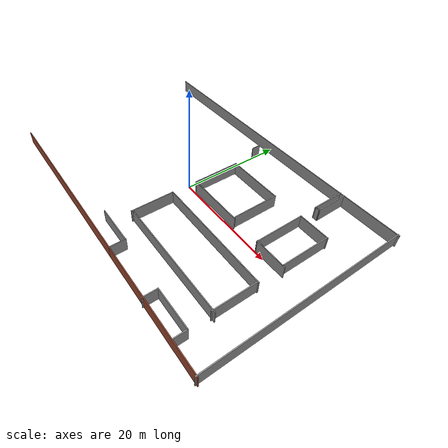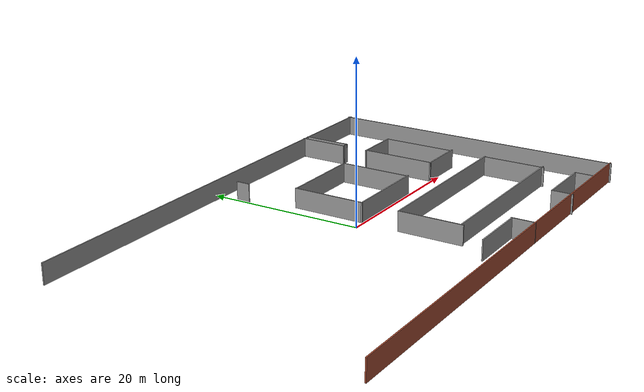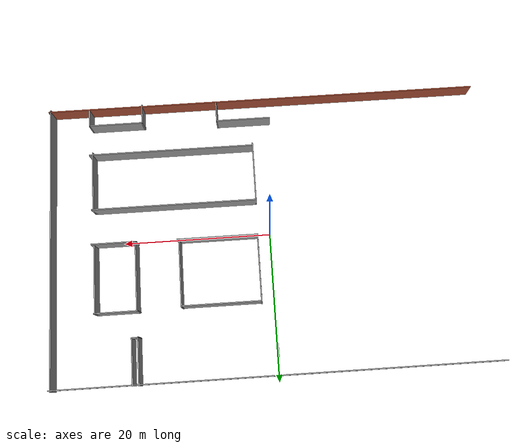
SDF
<sdf version="1.7">
 <model name="map_mir">
  <link name="Wall_0">
   <pose>0.059737 19.1491 0 0 -0 0</pose>
   <visual name="Wall_0_Visual">
    <pose>0 0 1.2475 0 -0 0</pose>
    <geometry><box><size>59.65 0.15 2.495</size></box></geometry>
    <material>
     <script><uri>file://media/materials/scripts/gazebo.material</uri><name>Gazebo/Grey</name></script>
     <ambient>1 1 1 1</ambient>
     <shader type="pixel"/>
    </material>
    <meta><layer>0</layer></meta>
   </visual>
   <collision name="Wall_0_Collision">
    <pose>0 0 1.2475 0 -0 0</pose>
    <geometry><box><size>59.65 0.15 2.495</size></box></geometry>
    <surface>
     <friction>
      <ode><mu>1</mu><mu2>1</mu2><fdir1>0 0 0</fdir1><slip1>0</slip1><slip2>0</slip2></ode>
      <torsional>
       <coefficient>1</coefficient>
       <patch_radius>0</patch_radius>
       <surface_radius>0</surface_radius>
       <use_patch_radius>1</use_patch_radius>
       <ode><slip>0</slip></ode>
      </torsional>
     </friction>
     <bounce><restitution_coefficient>0</restitution_coefficient><threshold>1e+06</threshold></bounce>
     <contact>
      <collide_without_contact>0</collide_without_contact>
      <collide_without_contact_bitmask>1</collide_without_contact_bitmask>
      <collide_bitmask>1</collide_bitmask>
      <ode>
       <soft_cfm>0</soft_cfm>
       <soft_erp>0.2</soft_erp>
       <kp>1e+13</kp>
       <kd>1</kd>
       <max_vel>0.01</max_vel>
       <min_depth>0</min_depth>
      </ode>
      <bullet>
       <split_impulse>1</split_impulse>
       <split_impulse_penetration_threshold>-0.01</split_impulse_penetration_threshold>
       <soft_cfm>0</soft_cfm>
       <soft_erp>0.2</soft_erp>
       <kp>1e+13</kp>
       <kd>1</kd>
      </bullet>
     </contact>
    </surface>
   </collision>
  </link>
  <link name="Wall_1">
   <pose>29.5673 0.013012 0 0 0 -1.5708</pose>
   <visual name="Wall_1_Visual">
    <pose>0 0 1.25 0 -0 0</pose>
    <geometry><box><size>38.75 0.15 2.5</size></box></geometry>
    <material>
     <script><uri>file://media/materials/scripts/gazebo.material</uri><name>Gazebo/Grey</name></script>
     <ambient>1 1 1 1</ambient>
     <shader type="pixel"/>
    </material>
    <meta><layer>0</layer></meta>
   </visual>
   <collision name="Wall_1_Collision">
    <pose>0 0 1.25 0 -0 0</pose>
    <geometry><box><size>38.75 0.15 2.5</size></box></geometry>
    <surface>
     <friction>
      <ode><mu>1</mu><mu2>1</mu2><fdir1>0 0 0</fdir1><slip1>0</slip1><slip2>0</slip2></ode>
      <torsional>
       <coefficient>1</coefficient>
       <patch_radius>0</patch_radius>
       <surface_radius>0</surface_radius>
       <use_patch_radius>1</use_patch_radius>
       <ode><slip>0</slip></ode>
      </torsional>
     </friction>
     <bounce><restitution_coefficient>0</restitution_coefficient><threshold>1e+06</threshold></bounce>
     <contact>
      <collide_without_contact>0</collide_without_contact>
      <collide_without_contact_bitmask>1</collide_without_contact_bitmask>
      <collide_bitmask>1</collide_bitmask>
      <ode>
       <soft_cfm>0</soft_cfm>
       <soft_erp>0.2</soft_erp>
       <kp>1e+13</kp>
       <kd>1</kd>
       <max_vel>0.01</max_vel>
       <min_depth>0</min_depth>
      </ode>
      <bullet>
       <split_impulse>1</split_impulse>
       <split_impulse_penetration_threshold>-0.01</split_impulse_penetration_threshold>
       <soft_cfm>0</soft_cfm>
       <soft_erp>0.2</soft_erp>
       <kp>1e+13</kp>
       <kd>1</kd>
      </bullet>
     </contact>
    </surface>
   </collision>
  </link>
  <link name="Wall_2">
   <pose>0.059738 -19.1013 0 0 -0 3.14159</pose>
   <visual name="Wall_2_Visual">
    <pose>0 0 1.25 0 -0 0</pose>
    <geometry><box><size>59.65 0.15 2.5</size></box></geometry>
    <material>
     <script><uri>file://media/materials/scripts/gazebo.material</uri><name>Gazebo/Bricks</name></script>
     <ambient>1 0.764706 0.305882 1</ambient>
     <shader type="pixel"/>
    </material>
    <meta><layer>0</layer></meta>
   </visual>
   <collision name="Wall_2_Collision">
    <pose>0 0 1.25 0 -0 0</pose>
    <geometry><box><size>59.65 0.15 2.5</size></box></geometry>
    <surface>
     <friction>
      <ode><mu>1</mu><mu2>1</mu2><fdir1>0 0 0</fdir1><slip1>0</slip1><slip2>0</slip2></ode>
      <torsional>
       <coefficient>1</coefficient>
       <patch_radius>0</patch_radius>
       <surface_radius>0</surface_radius>
       <use_patch_radius>1</use_patch_radius>
       <ode><slip>0</slip></ode>
      </torsional>
     </friction>
     <bounce><restitution_coefficient>0</restitution_coefficient><threshold>1e+06</threshold></bounce>
     <contact>
      <collide_without_contact>0</collide_without_contact>
      <collide_without_contact_bitmask>1</collide_without_contact_bitmask>
      <collide_bitmask>1</collide_bitmask>
      <ode>
       <soft_cfm>0</soft_cfm>
       <soft_erp>0.2</soft_erp>
       <kp>1e+13</kp>
       <kd>1</kd>
       <max_vel>0.01</max_vel>
       <min_depth>0</min_depth>
      </ode>
      <bullet>
       <split_impulse>1</split_impulse>
       <split_impulse_penetration_threshold>-0.01</split_impulse_penetration_threshold>
       <soft_cfm>0</soft_cfm>
       <soft_erp>0.2</soft_erp>
       <kp>1e+13</kp>
       <kd>1</kd>
      </bullet>
     </contact>
    </surface>
   </collision>
  </link>
  <link name="Wall_25">
   <pose>18.1409 16.1479 0 0 0 -1.5708</pose>
   <visual name="Wall_25_Visual">
    <pose>0 0 1.25 0 -0 0</pose>
    <geometry><box><size>6.32102 0.15 2.5</size></box></geometry>
    <material>
     <script><uri>file://media/materials/scripts/gazebo.material</uri><name>Gazebo/Grey</name></script>
     <ambient>1 1 1 1</ambient>
     <shader type="pixel"/>
    </material>
    <meta><layer>0</layer></meta>
   </visual>
   <collision name="Wall_25_Collision">
    <pose>0 0 1.25 0 -0 0</pose>
    <geometry><box><size>6.32102 0.15 2.5</size></box></geometry>
    <surface>
     <friction>
      <ode><mu>1</mu><mu2>1</mu2><fdir1>0 0 0</fdir1><slip1>0</slip1><slip2>0</slip2></ode>
      <torsional>
       <coefficient>1</coefficient>
       <patch_radius>0</patch_radius>
       <surface_radius>0</surface_radius>
       <use_patch_radius>1</use_patch_radius>
       <ode><slip>0</slip></ode>
      </torsional>
     </friction>
     <bounce><restitution_coefficient>0</restitution_coefficient><threshold>1e+06</threshold></bounce>
     <contact>
      <collide_without_contact>0</collide_without_contact>
      <collide_without_contact_bitmask>1</collide_without_contact_bitmask>
      <collide_bitmask>1</collide_bitmask>
      <ode>
       <soft_cfm>0</soft_cfm>
       <soft_erp>0.2</soft_erp>
       <kp>1e+13</kp>
       <kd>1</kd>
       <max_vel>0.01</max_vel>
       <min_depth>0</min_depth>
      </ode>
      <bullet>
       <split_impulse>1</split_impulse>
       <split_impulse_penetration_threshold>-0.01</split_impulse_penetration_threshold>
       <soft_cfm>0</soft_cfm>
       <soft_erp>0.2</soft_erp>
       <kp>1e+13</kp>
       <kd>1</kd>
      </bullet>
     </contact>
    </surface>
   </collision>
  </link>
  <link name="Wall_26">
   <pose>18.5514 13.1096 0 0 0 -0.015213</pose>
   <visual name="Wall_26_Visual">
    <pose>0 0 1.25 0 -0 0</pose>
    <geometry><box><size>0.971132 0.15 2.5</size></box></geometry>
    <material>
     <script><uri>file://media/materials/scripts/gazebo.material</uri><name>Gazebo/Grey</name></script>
     <ambient>1 1 1 1</ambient>
     <shader type="pixel"/>
    </material>
    <meta><layer>0</layer></meta>
   </visual>
   <collision name="Wall_26_Collision">
    <pose>0 0 1.25 0 -0 0</pose>
    <geometry><box><size>0.971132 0.15 2.5</size></box></geometry>
    <surface>
     <friction>
      <ode><mu>1</mu><mu2>1</mu2><fdir1>0 0 0</fdir1><slip1>0</slip1><slip2>0</slip2></ode>
      <torsional>
       <coefficient>1</coefficient>
       <patch_radius>0</patch_radius>
       <surface_radius>0</surface_radius>
       <use_patch_radius>1</use_patch_radius>
       <ode><slip>0</slip></ode>
      </torsional>
     </friction>
     <bounce><restitution_coefficient>0</restitution_coefficient><threshold>1e+06</threshold></bounce>
     <contact>
      <collide_without_contact>0</collide_without_contact>
      <collide_without_contact_bitmask>1</collide_without_contact_bitmask>
      <collide_bitmask>1</collide_bitmask>
      <ode>
       <soft_cfm>0</soft_cfm>
       <soft_erp>0.2</soft_erp>
       <kp>1e+13</kp>
       <kd>1</kd>
       <max_vel>0.01</max_vel>
       <min_depth>0</min_depth>
      </ode>
      <bullet>
       <split_impulse>1</split_impulse>
       <split_impulse_penetration_threshold>-0.01</split_impulse_penetration_threshold>
       <soft_cfm>0</soft_cfm>
       <soft_erp>0.2</soft_erp>
       <kp>1e+13</kp>
       <kd>1</kd>
      </bullet>
     </contact>
    </surface>
   </collision>
  </link>
  <link name="Wall_27">
   <pose>18.9619 16.1534 0 0 -0 1.5708</pose>
   <visual name="Wall_27_Visual">
    <pose>0 0 1.25 0 -0 0</pose>
    <geometry><box><size>6.25 0.15 2.5</size></box></geometry>
    <material>
     <script><uri>file://media/materials/scripts/gazebo.material</uri><name>Gazebo/Grey</name></script>
     <ambient>1 1 1 1</ambient>
     <shader type="pixel"/>
    </material>
    <meta><layer>0</layer></meta>
   </visual>
   <collision name="Wall_27_Collision">
    <pose>0 0 1.25 0 -0 0</pose>
    <geometry><box><size>6.25 0.15 2.5</size></box></geometry>
    <surface>
     <friction>
      <ode><mu>1</mu><mu2>1</mu2><fdir1>0 0 0</fdir1><slip1>0</slip1><slip2>0</slip2></ode>
      <torsional>
       <coefficient>1</coefficient>
       <patch_radius>0</patch_radius>
       <surface_radius>0</surface_radius>
       <use_patch_radius>1</use_patch_radius>
       <ode><slip>0</slip></ode>
      </torsional>
     </friction>
     <bounce><restitution_coefficient>0</restitution_coefficient><threshold>1e+06</threshold></bounce>
     <contact>
      <collide_without_contact>0</collide_without_contact>
      <collide_without_contact_bitmask>1</collide_without_contact_bitmask>
      <collide_bitmask>1</collide_bitmask>
      <ode>
       <soft_cfm>0</soft_cfm>
       <soft_erp>0.2</soft_erp>
       <kp>1e+13</kp>
       <kd>1</kd>
       <max_vel>0.01</max_vel>
       <min_depth>0</min_depth>
      </ode>
      <bullet>
       <split_impulse>1</split_impulse>
       <split_impulse_penetration_threshold>-0.01</split_impulse_penetration_threshold>
       <soft_cfm>0</soft_cfm>
       <soft_erp>0.2</soft_erp>
       <kp>1e+13</kp>
       <kd>1</kd>
      </bullet>
     </contact>
    </surface>
   </collision>
  </link>
  <link name="Wall_39">
   <pose>2.71296 -16.3049 0 0 -0 0</pose>
   <visual name="Wall_39_Visual">
    <pose>0 0 1.25 0 -0 0</pose>
    <geometry><box><size>7.5 0.15 2.5</size></box></geometry>
    <material>
     <script><uri>file://media/materials/scripts/gazebo.material</uri><name>Gazebo/Grey</name></script>
     <ambient>1 1 1 1</ambient>
     <shader type="pixel"/>
    </material>
    <meta><layer>0</layer></meta>
   </visual>
   <collision name="Wall_39_Collision">
    <pose>0 0 1.25 0 -0 0</pose>
    <geometry><box><size>7.5 0.15 2.5</size></box></geometry>
    <surface>
     <friction>
      <ode><mu>1</mu><mu2>1</mu2><fdir1>0 0 0</fdir1><slip1>0</slip1><slip2>0</slip2></ode>
      <torsional>
       <coefficient>1</coefficient>
       <patch_radius>0</patch_radius>
       <surface_radius>0</surface_radius>
       <use_patch_radius>1</use_patch_radius>
       <ode><slip>0</slip></ode>
      </torsional>
     </friction>
     <bounce><restitution_coefficient>0</restitution_coefficient><threshold>1e+06</threshold></bounce>
     <contact>
      <collide_without_contact>0</collide_without_contact>
      <collide_without_contact_bitmask>1</collide_without_contact_bitmask>
      <collide_bitmask>1</collide_bitmask>
      <ode>
       <soft_cfm>0</soft_cfm>
       <soft_erp>0.2</soft_erp>
       <kp>1e+13</kp>
       <kd>1</kd>
       <max_vel>0.01</max_vel>
       <min_depth>0</min_depth>
      </ode>
      <bullet>
       <split_impulse>1</split_impulse>
       <split_impulse_penetration_threshold>-0.01</split_impulse_penetration_threshold>
       <soft_cfm>0</soft_cfm>
       <soft_erp>0.2</soft_erp>
       <kp>1e+13</kp>
       <kd>1</kd>
      </bullet>
     </contact>
    </surface>
   </collision>
  </link>
  <link name="Wall_40">
   <pose>6.38796 -17.6782 0 0 0 -1.5708</pose>
   <visual name="Wall_40_Visual">
    <pose>0 0 1.25 0 -0 0</pose>
    <geometry><box><size>3 0.15 2.5</size></box></geometry>
    <material>
     <script><uri>file://media/materials/scripts/gazebo.material</uri><name>Gazebo/Grey</name></script>
     <ambient>1 1 1 1</ambient>
     <shader type="pixel"/>
    </material>
    <meta><layer>0</layer></meta>
   </visual>
   <collision name="Wall_40_Collision">
    <pose>0 0 1.25 0 -0 0</pose>
    <geometry><box><size>3 0.15 2.5</size></box></geometry>
    <surface>
     <friction>
      <ode><mu>1</mu><mu2>1</mu2><fdir1>0 0 0</fdir1><slip1>0</slip1><slip2>0</slip2></ode>
      <torsional>
       <coefficient>1</coefficient>
       <patch_radius>0</patch_radius>
       <surface_radius>0</surface_radius>
       <use_patch_radius>1</use_patch_radius>
       <ode><slip>0</slip></ode>
      </torsional>
     </friction>
     <bounce><restitution_coefficient>0</restitution_coefficient><threshold>1e+06</threshold></bounce>
     <contact>
      <collide_without_contact>0</collide_without_contact>
      <collide_without_contact_bitmask>1</collide_without_contact_bitmask>
      <collide_bitmask>1</collide_bitmask>
      <ode>
       <soft_cfm>0</soft_cfm>
       <soft_erp>0.2</soft_erp>
       <kp>1e+13</kp>
       <kd>1</kd>
       <max_vel>0.01</max_vel>
       <min_depth>0</min_depth>
      </ode>
      <bullet>
       <split_impulse>1</split_impulse>
       <split_impulse_penetration_threshold>-0.01</split_impulse_penetration_threshold>
       <soft_cfm>0</soft_cfm>
       <soft_erp>0.2</soft_erp>
       <kp>1e+13</kp>
       <kd>1</kd>
      </bullet>
     </contact>
    </surface>
   </collision>
  </link>
  <link name="Wall_42">
   <pose>16.8174 -18.001 0 0 -0 1.5708</pose>
   <visual name="Wall_42_Visual">
    <pose>0 0 1.25 0 -0 0</pose>
    <geometry><box><size>2.75 0.15 2.5</size></box></geometry>
    <material>
     <script><uri>file://media/materials/scripts/gazebo.material</uri><name>Gazebo/Grey</name></script>
     <ambient>1 1 1 1</ambient>
     <shader type="pixel"/>
    </material>
    <meta><layer>0</layer></meta>
   </visual>
   <collision name="Wall_42_Collision">
    <pose>0 0 1.25 0 -0 0</pose>
    <geometry><box><size>2.75 0.15 2.5</size></box></geometry>
    <surface>
     <friction>
      <ode><mu>1</mu><mu2>1</mu2><fdir1>0 0 0</fdir1><slip1>0</slip1><slip2>0</slip2></ode>
      <torsional>
       <coefficient>1</coefficient>
       <patch_radius>0</patch_radius>
       <surface_radius>0</surface_radius>
       <use_patch_radius>1</use_patch_radius>
       <ode><slip>0</slip></ode>
      </torsional>
     </friction>
     <bounce><restitution_coefficient>0</restitution_coefficient><threshold>1e+06</threshold></bounce>
     <contact>
      <collide_without_contact>0</collide_without_contact>
      <collide_without_contact_bitmask>1</collide_without_contact_bitmask>
      <collide_bitmask>1</collide_bitmask>
      <ode>
       <soft_cfm>0</soft_cfm>
       <soft_erp>0.2</soft_erp>
       <kp>1e+13</kp>
       <kd>1</kd>
       <max_vel>0.01</max_vel>
       <min_depth>0</min_depth>
      </ode>
      <bullet>
       <split_impulse>1</split_impulse>
       <split_impulse_penetration_threshold>-0.01</split_impulse_penetration_threshold>
       <soft_cfm>0</soft_cfm>
       <soft_erp>0.2</soft_erp>
       <kp>1e+13</kp>
       <kd>1</kd>
      </bullet>
     </contact>
    </surface>
   </collision>
  </link>
  <link name="Wall_43">
   <pose>20.4924 -16.701 0 0 -0 0</pose>
   <visual name="Wall_43_Visual">
    <pose>0 0 1.25 0 -0 0</pose>
    <geometry><box><size>7.5 0.15 2.5</size></box></geometry>
    <material>
     <script><uri>file://media/materials/scripts/gazebo.material</uri><name>Gazebo/Grey</name></script>
     <ambient>1 1 1 1</ambient>
     <shader type="pixel"/>
    </material>
    <meta><layer>0</layer></meta>
   </visual>
   <collision name="Wall_43_Collision">
    <pose>0 0 1.25 0 -0 0</pose>
    <geometry><box><size>7.5 0.15 2.5</size></box></geometry>
    <surface>
     <friction>
      <ode><mu>1</mu><mu2>1</mu2><fdir1>0 0 0</fdir1><slip1>0</slip1><slip2>0</slip2></ode>
      <torsional>
       <coefficient>1</coefficient>
       <patch_radius>0</patch_radius>
       <surface_radius>0</surface_radius>
       <use_patch_radius>1</use_patch_radius>
       <ode><slip>0</slip></ode>
      </torsional>
     </friction>
     <bounce><restitution_coefficient>0</restitution_coefficient><threshold>1e+06</threshold></bounce>
     <contact>
      <collide_without_contact>0</collide_without_contact>
      <collide_without_contact_bitmask>1</collide_without_contact_bitmask>
      <collide_bitmask>1</collide_bitmask>
      <ode>
       <soft_cfm>0</soft_cfm>
       <soft_erp>0.2</soft_erp>
       <kp>1e+13</kp>
       <kd>1</kd>
       <max_vel>0.01</max_vel>
       <min_depth>0</min_depth>
      </ode>
      <bullet>
       <split_impulse>1</split_impulse>
       <split_impulse_penetration_threshold>-0.01</split_impulse_penetration_threshold>
       <soft_cfm>0</soft_cfm>
       <soft_erp>0.2</soft_erp>
       <kp>1e+13</kp>
       <kd>1</kd>
      </bullet>
     </contact>
    </surface>
   </collision>
  </link>
  <link name="Wall_44">
   <pose>24.1674 -17.876 0 0 0 -1.5708</pose>
   <visual name="Wall_44_Visual">
    <pose>0 0 1.25 0 -0 0</pose>
    <geometry><box><size>2.5 0.15 2.5</size></box></geometry>
    <material>
     <script><uri>file://media/materials/scripts/gazebo.material</uri><name>Gazebo/Grey</name></script>
     <ambient>1 1 1 1</ambient>
     <shader type="pixel"/>
    </material>
    <meta><layer>0</layer></meta>
   </visual>
   <collision name="Wall_44_Collision">
    <pose>0 0 1.25 0 -0 0</pose>
    <geometry><box><size>2.5 0.15 2.5</size></box></geometry>
    <surface>
     <friction>
      <ode><mu>1</mu><mu2>1</mu2><fdir1>0 0 0</fdir1><slip1>0</slip1><slip2>0</slip2></ode>
      <torsional>
       <coefficient>1</coefficient>
       <patch_radius>0</patch_radius>
       <surface_radius>0</surface_radius>
       <use_patch_radius>1</use_patch_radius>
       <ode><slip>0</slip></ode>
      </torsional>
     </friction>
     <bounce><restitution_coefficient>0</restitution_coefficient><threshold>1e+06</threshold></bounce>
     <contact>
      <collide_without_contact>0</collide_without_contact>
      <collide_without_contact_bitmask>1</collide_without_contact_bitmask>
      <collide_bitmask>1</collide_bitmask>
      <ode>
       <soft_cfm>0</soft_cfm>
       <soft_erp>0.2</soft_erp>
       <kp>1e+13</kp>
       <kd>1</kd>
       <max_vel>0.01</max_vel>
       <min_depth>0</min_depth>
      </ode>
      <bullet>
       <split_impulse>1</split_impulse>
       <split_impulse_penetration_threshold>-0.01</split_impulse_penetration_threshold>
       <soft_cfm>0</soft_cfm>
       <soft_erp>0.2</soft_erp>
       <kp>1e+13</kp>
       <kd>1</kd>
      </bullet>
     </contact>
    </surface>
   </collision>
  </link>
  <link name="Wall_46">
   <pose>12.91 -12.4029 0 0 -0 3.14159</pose>
   <visual name="Wall_46_Visual">
    <pose>0 0 1.25 0 -0 0</pose>
    <geometry><box><size>22.75 0.15 2.5</size></box></geometry>
    <material>
     <script><uri>file://media/materials/scripts/gazebo.material</uri><name>Gazebo/Grey</name></script>
     <ambient>1 1 1 1</ambient>
     <shader type="pixel"/>
    </material>
    <meta><layer>0</layer></meta>
   </visual>
   <collision name="Wall_46_Collision">
    <pose>0 0 1.25 0 -0 0</pose>
    <geometry><box><size>22.75 0.15 2.5</size></box></geometry>
    <surface>
     <friction>
      <ode><mu>1</mu><mu2>1</mu2><fdir1>0 0 0</fdir1><slip1>0</slip1><slip2>0</slip2></ode>
      <torsional>
       <coefficient>1</coefficient>
       <patch_radius>0</patch_radius>
       <surface_radius>0</surface_radius>
       <use_patch_radius>1</use_patch_radius>
       <ode><slip>0</slip></ode>
      </torsional>
     </friction>
     <bounce><restitution_coefficient>0</restitution_coefficient><threshold>1e+06</threshold></bounce>
     <contact>
      <collide_without_contact>0</collide_without_contact>
      <collide_without_contact_bitmask>1</collide_without_contact_bitmask>
      <collide_bitmask>1</collide_bitmask>
      <ode>
       <soft_cfm>0</soft_cfm>
       <soft_erp>0.2</soft_erp>
       <kp>1e+13</kp>
       <kd>1</kd>
       <max_vel>0.01</max_vel>
       <min_depth>0</min_depth>
      </ode>
      <bullet>
       <split_impulse>1</split_impulse>
       <split_impulse_penetration_threshold>-0.01</split_impulse_penetration_threshold>
       <soft_cfm>0</soft_cfm>
       <soft_erp>0.2</soft_erp>
       <kp>1e+13</kp>
       <kd>1</kd>
      </bullet>
     </contact>
    </surface>
   </collision>
  </link>
  <link name="Wall_47">
   <pose>1.60996 -8.60713 0 0 -0 1.5708</pose>
   <visual name="Wall_47_Visual">
    <pose>0 0 1.25 0 -0 0</pose>
    <geometry><box><size>8.25 0.15 2.5</size></box></geometry>
    <material>
     <script><uri>file://media/materials/scripts/gazebo.material</uri><name>Gazebo/Grey</name></script>
     <ambient>1 1 1 1</ambient>
     <shader type="pixel"/>
    </material>
    <meta><layer>0</layer></meta>
   </visual>
   <collision name="Wall_47_Collision">
    <pose>0 0 1.25 0 -0 0</pose>
    <geometry><box><size>8.25 0.15 2.5</size></box></geometry>
    <surface>
     <friction>
      <ode><mu>1</mu><mu2>1</mu2><fdir1>0 0 0</fdir1><slip1>0</slip1><slip2>0</slip2></ode>
      <torsional>
       <coefficient>1</coefficient>
       <patch_radius>0</patch_radius>
       <surface_radius>0</surface_radius>
       <use_patch_radius>1</use_patch_radius>
       <ode><slip>0</slip></ode>
      </torsional>
     </friction>
     <bounce><restitution_coefficient>0</restitution_coefficient><threshold>1e+06</threshold></bounce>
     <contact>
      <collide_without_contact>0</collide_without_contact>
      <collide_without_contact_bitmask>1</collide_without_contact_bitmask>
      <collide_bitmask>1</collide_bitmask>
      <ode>
       <soft_cfm>0</soft_cfm>
       <soft_erp>0.2</soft_erp>
       <kp>1e+13</kp>
       <kd>1</kd>
       <max_vel>0.01</max_vel>
       <min_depth>0</min_depth>
      </ode>
      <bullet>
       <split_impulse>1</split_impulse>
       <split_impulse_penetration_threshold>-0.01</split_impulse_penetration_threshold>
       <soft_cfm>0</soft_cfm>
       <soft_erp>0.2</soft_erp>
       <kp>1e+13</kp>
       <kd>1</kd>
      </bullet>
     </contact>
    </surface>
   </collision>
  </link>
  <link name="Wall_48">
   <pose>12.785 -4.55713 0 0 -0 0</pose>
   <visual name="Wall_48_Visual">
    <pose>0 0 1.25 0 -0 0</pose>
    <geometry><box><size>22.5 0.15 2.5</size></box></geometry>
    <material>
     <script><uri>file://media/materials/scripts/gazebo.material</uri><name>Gazebo/Grey</name></script>
     <ambient>1 1 1 1</ambient>
     <shader type="pixel"/>
    </material>
    <meta><layer>0</layer></meta>
   </visual>
   <collision name="Wall_48_Collision">
    <pose>0 0 1.25 0 -0 0</pose>
    <geometry><box><size>22.5 0.15 2.5</size></box></geometry>
    <surface>
     <friction>
      <ode><mu>1</mu><mu2>1</mu2><fdir1>0 0 0</fdir1><slip1>0</slip1><slip2>0</slip2></ode>
      <torsional>
       <coefficient>1</coefficient>
       <patch_radius>0</patch_radius>
       <surface_radius>0</surface_radius>
       <use_patch_radius>1</use_patch_radius>
       <ode><slip>0</slip></ode>
      </torsional>
     </friction>
     <bounce><restitution_coefficient>0</restitution_coefficient><threshold>1e+06</threshold></bounce>
     <contact>
      <collide_without_contact>0</collide_without_contact>
      <collide_without_contact_bitmask>1</collide_without_contact_bitmask>
      <collide_bitmask>1</collide_bitmask>
      <ode>
       <soft_cfm>0</soft_cfm>
       <soft_erp>0.2</soft_erp>
       <kp>1e+13</kp>
       <kd>1</kd>
       <max_vel>0.01</max_vel>
       <min_depth>0</min_depth>
      </ode>
      <bullet>
       <split_impulse>1</split_impulse>
       <split_impulse_penetration_threshold>-0.01</split_impulse_penetration_threshold>
       <soft_cfm>0</soft_cfm>
       <soft_erp>0.2</soft_erp>
       <kp>1e+13</kp>
       <kd>1</kd>
      </bullet>
     </contact>
    </surface>
   </collision>
  </link>
  <link name="Wall_49">
   <pose>23.785 -8.60713 0 0 0 -1.5708</pose>
   <visual name="Wall_49_Visual">
    <pose>0 0 1.25 0 -0 0</pose>
    <geometry><box><size>8.25 0.15 2.5</size></box></geometry>
    <material>
     <script><uri>file://media/materials/scripts/gazebo.material</uri><name>Gazebo/Grey</name></script>
     <ambient>1 1 1 1</ambient>
     <shader type="pixel"/>
    </material>
    <meta><layer>0</layer></meta>
   </visual>
   <collision name="Wall_49_Collision">
    <pose>0 0 1.25 0 -0 0</pose>
    <geometry><box><size>8.25 0.15 2.5</size></box></geometry>
    <surface>
     <friction>
      <ode><mu>1</mu><mu2>1</mu2><fdir1>0 0 0</fdir1><slip1>0</slip1><slip2>0</slip2></ode>
      <torsional>
       <coefficient>1</coefficient>
       <patch_radius>0</patch_radius>
       <surface_radius>0</surface_radius>
       <use_patch_radius>1</use_patch_radius>
       <ode><slip>0</slip></ode>
      </torsional>
     </friction>
     <bounce><restitution_coefficient>0</restitution_coefficient><threshold>1e+06</threshold></bounce>
     <contact>
      <collide_without_contact>0</collide_without_contact>
      <collide_without_contact_bitmask>1</collide_without_contact_bitmask>
      <collide_bitmask>1</collide_bitmask>
      <ode>
       <soft_cfm>0</soft_cfm>
       <soft_erp>0.2</soft_erp>
       <kp>1e+13</kp>
       <kd>1</kd>
       <max_vel>0.01</max_vel>
       <min_depth>0</min_depth>
      </ode>
      <bullet>
       <split_impulse>1</split_impulse>
       <split_impulse_penetration_threshold>-0.01</split_impulse_penetration_threshold>
       <soft_cfm>0</soft_cfm>
       <soft_erp>0.2</soft_erp>
       <kp>1e+13</kp>
       <kd>1</kd>
      </bullet>
     </contact>
    </surface>
   </collision>
  </link>
  <link name="Wall_51">
   <pose>21.1138 0.256385 0 0 -0 3.14159</pose>
   <visual name="Wall_51_Visual">
    <pose>0 0 1.25 0 -0 0</pose>
    <geometry><box><size>6.15512 0.15 2.5</size></box></geometry>
    <material>
     <script><uri>file://media/materials/scripts/gazebo.material</uri><name>Gazebo/Grey</name></script>
     <ambient>1 1 1 1</ambient>
     <shader type="pixel"/>
    </material>
    <meta><layer>0</layer></meta>
   </visual>
   <collision name="Wall_51_Collision">
    <pose>0 0 1.25 0 -0 0</pose>
    <geometry><box><size>6.15512 0.15 2.5</size></box></geometry>
    <surface>
     <friction>
      <ode><mu>1</mu><mu2>1</mu2><fdir1>0 0 0</fdir1><slip1>0</slip1><slip2>0</slip2></ode>
      <torsional>
       <coefficient>1</coefficient>
       <patch_radius>0</patch_radius>
       <surface_radius>0</surface_radius>
       <use_patch_radius>1</use_patch_radius>
       <ode><slip>0</slip></ode>
      </torsional>
     </friction>
     <bounce><restitution_coefficient>0</restitution_coefficient><threshold>1e+06</threshold></bounce>
     <contact>
      <collide_without_contact>0</collide_without_contact>
      <collide_without_contact_bitmask>1</collide_without_contact_bitmask>
      <collide_bitmask>1</collide_bitmask>
      <ode>
       <soft_cfm>0</soft_cfm>
       <soft_erp>0.2</soft_erp>
       <kp>1e+13</kp>
       <kd>1</kd>
       <max_vel>0.01</max_vel>
       <min_depth>0</min_depth>
      </ode>
      <bullet>
       <split_impulse>1</split_impulse>
       <split_impulse_penetration_threshold>-0.01</split_impulse_penetration_threshold>
       <soft_cfm>0</soft_cfm>
       <soft_erp>0.2</soft_erp>
       <kp>1e+13</kp>
       <kd>1</kd>
      </bullet>
     </contact>
    </surface>
   </collision>
  </link>
  <link name="Wall_52">
   <pose>18.182 4.93138 0 0 -0 1.5708</pose>
   <visual name="Wall_52_Visual">
    <pose>0 0 1.25 0 -0 0</pose>
    <geometry><box><size>9.5 0.15 2.5</size></box></geometry>
    <material>
     <script><uri>file://media/materials/scripts/gazebo.material</uri><name>Gazebo/Grey</name></script>
     <ambient>1 1 1 1</ambient>
     <shader type="pixel"/>
    </material>
    <meta><layer>0</layer></meta>
   </visual>
   <collision name="Wall_52_Collision">
    <pose>0 0 1.25 0 -0 0</pose>
    <geometry><box><size>9.5 0.15 2.5</size></box></geometry>
    <surface>
     <friction>
      <ode><mu>1</mu><mu2>1</mu2><fdir1>0 0 0</fdir1><slip1>0</slip1><slip2>0</slip2></ode>
      <torsional>
       <coefficient>1</coefficient>
       <patch_radius>0</patch_radius>
       <surface_radius>0</surface_radius>
       <use_patch_radius>1</use_patch_radius>
       <ode><slip>0</slip></ode>
      </torsional>
     </friction>
     <bounce><restitution_coefficient>0</restitution_coefficient><threshold>1e+06</threshold></bounce>
     <contact>
      <collide_without_contact>0</collide_without_contact>
      <collide_without_contact_bitmask>1</collide_without_contact_bitmask>
      <collide_bitmask>1</collide_bitmask>
      <ode>
       <soft_cfm>0</soft_cfm>
       <soft_erp>0.2</soft_erp>
       <kp>1e+13</kp>
       <kd>1</kd>
       <max_vel>0.01</max_vel>
       <min_depth>0</min_depth>
      </ode>
      <bullet>
       <split_impulse>1</split_impulse>
       <split_impulse_penetration_threshold>-0.01</split_impulse_penetration_threshold>
       <soft_cfm>0</soft_cfm>
       <soft_erp>0.2</soft_erp>
       <kp>1e+13</kp>
       <kd>1</kd>
      </bullet>
     </contact>
    </surface>
   </collision>
  </link>
  <link name="Wall_53">
   <pose>20.9888 9.60638 0 0 -0 0</pose>
   <visual name="Wall_53_Visual">
    <pose>0 0 1.25 0 -0 0</pose>
    <geometry><box><size>5.90512 0.15 2.5</size></box></geometry>
    <material>
     <script><uri>file://media/materials/scripts/gazebo.material</uri><name>Gazebo/Grey</name></script>
     <ambient>1 1 1 1</ambient>
     <shader type="pixel"/>
    </material>
    <meta><layer>0</layer></meta>
   </visual>
   <collision name="Wall_53_Collision">
    <pose>0 0 1.25 0 -0 0</pose>
    <geometry><box><size>5.90512 0.15 2.5</size></box></geometry>
    <surface>
     <friction>
      <ode><mu>1</mu><mu2>1</mu2><fdir1>0 0 0</fdir1><slip1>0</slip1><slip2>0</slip2></ode>
      <torsional>
       <coefficient>1</coefficient>
       <patch_radius>0</patch_radius>
       <surface_radius>0</surface_radius>
       <use_patch_radius>1</use_patch_radius>
       <ode><slip>0</slip></ode>
      </torsional>
     </friction>
     <bounce><restitution_coefficient>0</restitution_coefficient><threshold>1e+06</threshold></bounce>
     <contact>
      <collide_without_contact>0</collide_without_contact>
      <collide_without_contact_bitmask>1</collide_without_contact_bitmask>
      <collide_bitmask>1</collide_bitmask>
      <ode>
       <soft_cfm>0</soft_cfm>
       <soft_erp>0.2</soft_erp>
       <kp>1e+13</kp>
       <kd>1</kd>
       <max_vel>0.01</max_vel>
       <min_depth>0</min_depth>
      </ode>
      <bullet>
       <split_impulse>1</split_impulse>
       <split_impulse_penetration_threshold>-0.01</split_impulse_penetration_threshold>
       <soft_cfm>0</soft_cfm>
       <soft_erp>0.2</soft_erp>
       <kp>1e+13</kp>
       <kd>1</kd>
      </bullet>
     </contact>
    </surface>
   </collision>
  </link>
  <link name="Wall_54">
   <pose>23.72 5.05638 0 0 0 -1.5708</pose>
   <visual name="Wall_54_Visual">
    <pose>0 0 1.25 0 -0 0</pose>
    <geometry><box><size>9.25 0.15 2.5</size></box></geometry>
    <material>
     <script><uri>file://media/materials/scripts/gazebo.material</uri><name>Gazebo/Grey</name></script>
     <ambient>1 1 1 1</ambient>
     <shader type="pixel"/>
    </material>
    <meta><layer>0</layer></meta>
   </visual>
   <collision name="Wall_54_Collision">
    <pose>0 0 1.25 0 -0 0</pose>
    <geometry><box><size>9.25 0.15 2.5</size></box></geometry>
    <surface>
     <friction>
      <ode><mu>1</mu><mu2>1</mu2><fdir1>0 0 0</fdir1><slip1>0</slip1><slip2>0</slip2></ode>
      <torsional>
       <coefficient>1</coefficient>
       <patch_radius>0</patch_radius>
       <surface_radius>0</surface_radius>
       <use_patch_radius>1</use_patch_radius>
       <ode><slip>0</slip></ode>
      </torsional>
     </friction>
     <bounce><restitution_coefficient>0</restitution_coefficient><threshold>1e+06</threshold></bounce>
     <contact>
      <collide_without_contact>0</collide_without_contact>
      <collide_without_contact_bitmask>1</collide_without_contact_bitmask>
      <collide_bitmask>1</collide_bitmask>
      <ode>
       <soft_cfm>0</soft_cfm>
       <soft_erp>0.2</soft_erp>
       <kp>1e+13</kp>
       <kd>1</kd>
       <max_vel>0.01</max_vel>
       <min_depth>0</min_depth>
      </ode>
      <bullet>
       <split_impulse>1</split_impulse>
       <split_impulse_penetration_threshold>-0.01</split_impulse_penetration_threshold>
       <soft_cfm>0</soft_cfm>
       <soft_erp>0.2</soft_erp>
       <kp>1e+13</kp>
       <kd>1</kd>
      </bullet>
     </contact>
    </surface>
   </collision>
  </link>
  <link name="Wall_56">
   <pose>7.123 0.333271 0 0 -0 3.14159</pose>
   <visual name="Wall_56_Visual">
    <pose>0 0 1.25 0 -0 0</pose>
    <geometry><box><size>11 0.15 2.5</size></box></geometry>
    <material>
     <script><uri>file://media/materials/scripts/gazebo.material</uri><name>Gazebo/Grey</name></script>
     <ambient>1 1 1 1</ambient>
     <shader type="pixel"/>
    </material>
    <meta><layer>0</layer></meta>
   </visual>
   <collision name="Wall_56_Collision">
    <pose>0 0 1.25 0 -0 0</pose>
    <geometry><box><size>11 0.15 2.5</size></box></geometry>
    <surface>
     <friction>
      <ode><mu>1</mu><mu2>1</mu2><fdir1>0 0 0</fdir1><slip1>0</slip1><slip2>0</slip2></ode>
      <torsional>
       <coefficient>1</coefficient>
       <patch_radius>0</patch_radius>
       <surface_radius>0</surface_radius>
       <use_patch_radius>1</use_patch_radius>
       <ode><slip>0</slip></ode>
      </torsional>
     </friction>
     <bounce><restitution_coefficient>0</restitution_coefficient><threshold>1e+06</threshold></bounce>
     <contact>
      <collide_without_contact>0</collide_without_contact>
      <collide_without_contact_bitmask>1</collide_without_contact_bitmask>
      <collide_bitmask>1</collide_bitmask>
      <ode>
       <soft_cfm>0</soft_cfm>
       <soft_erp>0.2</soft_erp>
       <kp>1e+13</kp>
       <kd>1</kd>
       <max_vel>0.01</max_vel>
       <min_depth>0</min_depth>
      </ode>
      <bullet>
       <split_impulse>1</split_impulse>
       <split_impulse_penetration_threshold>-0.01</split_impulse_penetration_threshold>
       <soft_cfm>0</soft_cfm>
       <soft_erp>0.2</soft_erp>
       <kp>1e+13</kp>
       <kd>1</kd>
      </bullet>
     </contact>
    </surface>
   </collision>
  </link>
  <link name="Wall_57">
   <pose>1.698 4.88327 0 0 -0 1.5708</pose>
   <visual name="Wall_57_Visual">
    <pose>0 0 1.25 0 -0 0</pose>
    <geometry><box><size>9.25 0.15 2.5</size></box></geometry>
    <material>
     <script><uri>file://media/materials/scripts/gazebo.material</uri><name>Gazebo/Grey</name></script>
     <ambient>1 1 1 1</ambient>
     <shader type="pixel"/>
    </material>
    <meta><layer>0</layer></meta>
   </visual>
   <collision name="Wall_57_Collision">
    <pose>0 0 1.25 0 -0 0</pose>
    <geometry><box><size>9.25 0.15 2.5</size></box></geometry>
    <surface>
     <friction>
      <ode><mu>1</mu><mu2>1</mu2><fdir1>0 0 0</fdir1><slip1>0</slip1><slip2>0</slip2></ode>
      <torsional>
       <coefficient>1</coefficient>
       <patch_radius>0</patch_radius>
       <surface_radius>0</surface_radius>
       <use_patch_radius>1</use_patch_radius>
       <ode><slip>0</slip></ode>
      </torsional>
     </friction>
     <bounce><restitution_coefficient>0</restitution_coefficient><threshold>1e+06</threshold></bounce>
     <contact>
      <collide_without_contact>0</collide_without_contact>
      <collide_without_contact_bitmask>1</collide_without_contact_bitmask>
      <collide_bitmask>1</collide_bitmask>
      <ode>
       <soft_cfm>0</soft_cfm>
       <soft_erp>0.2</soft_erp>
       <kp>1e+13</kp>
       <kd>1</kd>
       <max_vel>0.01</max_vel>
       <min_depth>0</min_depth>
      </ode>
      <bullet>
       <split_impulse>1</split_impulse>
       <split_impulse_penetration_threshold>-0.01</split_impulse_penetration_threshold>
       <soft_cfm>0</soft_cfm>
       <soft_erp>0.2</soft_erp>
       <kp>1e+13</kp>
       <kd>1</kd>
      </bullet>
     </contact>
    </surface>
   </collision>
  </link>
  <link name="Wall_58">
   <pose>6.998 9.35526 0 0 -0 0</pose>
   <visual name="Wall_58_Visual">
    <pose>0 0 1.25 0 -0 0</pose>
    <geometry><box><size>10.75 0.15 2.5</size></box></geometry>
    <material>
     <script><uri>file://media/materials/scripts/gazebo.material</uri><name>Gazebo/Grey</name></script>
     <ambient>1 1 1 1</ambient>
     <shader type="pixel"/>
    </material>
    <meta><layer>0</layer></meta>
   </visual>
   <collision name="Wall_58_Collision">
    <pose>0 0 1.25 0 -0 0</pose>
    <geometry><box><size>10.75 0.15 2.5</size></box></geometry>
    <surface>
     <friction>
      <ode><mu>1</mu><mu2>1</mu2><fdir1>0 0 0</fdir1><slip1>0</slip1><slip2>0</slip2></ode>
      <torsional>
       <coefficient>1</coefficient>
       <patch_radius>0</patch_radius>
       <surface_radius>0</surface_radius>
       <use_patch_radius>1</use_patch_radius>
       <ode><slip>0</slip></ode>
      </torsional>
     </friction>
     <bounce><restitution_coefficient>0</restitution_coefficient><threshold>1e+06</threshold></bounce>
     <contact>
      <collide_without_contact>0</collide_without_contact>
      <collide_without_contact_bitmask>1</collide_without_contact_bitmask>
      <collide_bitmask>1</collide_bitmask>
      <ode>
       <soft_cfm>0</soft_cfm>
       <soft_erp>0.2</soft_erp>
       <kp>1e+13</kp>
       <kd>1</kd>
       <max_vel>0.01</max_vel>
       <min_depth>0</min_depth>
      </ode>
      <bullet>
       <split_impulse>1</split_impulse>
       <split_impulse_penetration_threshold>-0.01</split_impulse_penetration_threshold>
       <soft_cfm>0</soft_cfm>
       <soft_erp>0.2</soft_erp>
       <kp>1e+13</kp>
       <kd>1</kd>
      </bullet>
     </contact>
    </surface>
   </collision>
  </link>
  <link name="Wall_59">
   <pose>12.298 4.88327 0 0 0 -1.5708</pose>
   <visual name="Wall_59_Visual">
    <pose>0 0 1.25 0 -0 0</pose>
    <geometry><box><size>9.25 0.15 2.5</size></box></geometry>
    <material>
     <script><uri>file://media/materials/scripts/gazebo.material</uri><name>Gazebo/Grey</name></script>
     <ambient>1 1 1 1</ambient>
     <shader type="pixel"/>
    </material>
    <meta><layer>0</layer></meta>
   </visual>
   <collision name="Wall_59_Collision">
    <pose>0 0 1.25 0 -0 0</pose>
    <geometry><box><size>9.25 0.15 2.5</size></box></geometry>
    <surface>
     <friction>
      <ode><mu>1</mu><mu2>1</mu2><fdir1>0 0 0</fdir1><slip1>0</slip1><slip2>0</slip2></ode>
      <torsional>
       <coefficient>1</coefficient>
       <patch_radius>0</patch_radius>
       <surface_radius>0</surface_radius>
       <use_patch_radius>1</use_patch_radius>
       <ode><slip>0</slip></ode>
      </torsional>
     </friction>
     <bounce><restitution_coefficient>0</restitution_coefficient><threshold>1e+06</threshold></bounce>
     <contact>
      <collide_without_contact>0</collide_without_contact>
      <collide_without_contact_bitmask>1</collide_without_contact_bitmask>
      <collide_bitmask>1</collide_bitmask>
      <ode>
       <soft_cfm>0</soft_cfm>
       <soft_erp>0.2</soft_erp>
       <kp>1e+13</kp>
       <kd>1</kd>
       <max_vel>0.01</max_vel>
       <min_depth>0</min_depth>
      </ode>
      <bullet>
       <split_impulse>1</split_impulse>
       <split_impulse_penetration_threshold>-0.01</split_impulse_penetration_threshold>
       <soft_cfm>0</soft_cfm>
       <soft_erp>0.2</soft_erp>
       <kp>1e+13</kp>
       <kd>1</kd>
      </bullet>
     </contact>
    </surface>
   </collision>
  </link>
  <link name="Wall_78">
   <pose>-0.067049 15.8864 -0 0 -0 1.5708</pose>
   <visual name="Wall_78_Visual">
    <pose>0 0 1.25 0 -0 0</pose>
    <geometry><box><size>1.75 0.15 2.5</size></box></geometry>
    <material>
     <script><uri>file://media/materials/scripts/gazebo.material</uri><name>Gazebo/Grey</name></script>
     <ambient>1 1 1 1</ambient>
     <shader type="pixel"/>
    </material>
    <meta><layer>0</layer></meta>
   </visual>
   <collision name="Wall_78_Collision">
    <pose>0 0 1.25 0 -0 0</pose>
    <geometry><box><size>1.75 0.15 2.5</size></box></geometry>
    <surface>
     <friction>
      <ode><mu>1</mu><mu2>1</mu2><fdir1>0 0 0</fdir1><slip1>0</slip1><slip2>0</slip2></ode>
      <torsional>
       <coefficient>1</coefficient>
       <patch_radius>0</patch_radius>
       <surface_radius>0</surface_radius>
       <use_patch_radius>1</use_patch_radius>
       <ode><slip>0</slip></ode>
      </torsional>
     </friction>
     <bounce><restitution_coefficient>0</restitution_coefficient><threshold>1e+06</threshold></bounce>
     <contact>
      <collide_without_contact>0</collide_without_contact>
      <collide_without_contact_bitmask>1</collide_without_contact_bitmask>
      <collide_bitmask>1</collide_bitmask>
      <ode>
       <soft_cfm>0</soft_cfm>
       <soft_erp>0.2</soft_erp>
       <kp>1e+13</kp>
       <kd>1</kd>
       <max_vel>0.01</max_vel>
       <min_depth>0</min_depth>
      </ode>
      <bullet>
       <split_impulse>1</split_impulse>
       <split_impulse_penetration_threshold>-0.01</split_impulse_penetration_threshold>
       <soft_cfm>0</soft_cfm>
       <soft_erp>0.2</soft_erp>
       <kp>1e+13</kp>
       <kd>1</kd>
      </bullet>
     </contact>
    </surface>
   </collision>
  </link>
  <static>1</static>
 </model>
</sdf>
